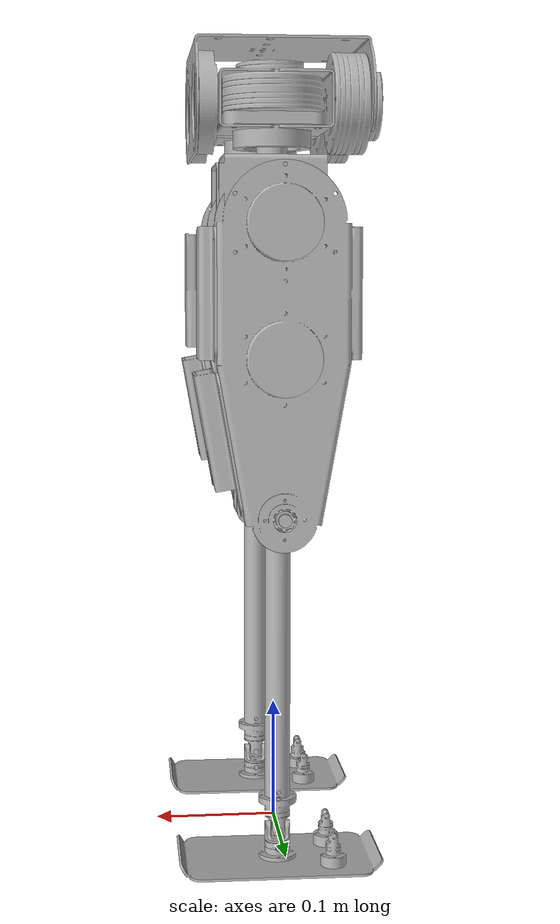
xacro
<?xml version="1.0" ?>
<robot name="bipedal_floating" xmlns:xacro="http://www.ros.org/wiki/xacro">

<xacro:include filename="$(find bipedal_floating_description)/urdf/materials.xacro" />
<xacro:include filename="$(find bipedal_floating_description)/urdf/bipedal_floating.trans" />
<xacro:include filename="$(find bipedal_floating_description)/urdf/bipedal_floating.gazebo" />

<link name="l_foot"/>
<joint name="l_foot_joint" type="fixed">
  <parent link="l_foot_1"/>
  <child link="l_foot"/>
  <origin xyz="0 0 -0.026" rpy="0 0 0"/>
</joint>

<link name="r_foot"/>
<joint name="r_foot_joint" type="fixed">
  <parent link="r_foot_1"/>
  <child link="r_foot"/>
  <origin xyz="0 0 -0.026" rpy="0 0 0"/>
</joint>

<link name="pelvis_link"/>

<joint name="pelvis_joint" type="fixed">
  <parent link="base_link"/>
  <child link="pelvis_link"/>
  <origin xyz="0 0 0.598" rpy="0 0 0"/>
</joint>

<link name="base_link">
  <inertial>
    <origin xyz="0.004448787386234898 1.5968454112255015e-14 0.6292535711325027" rpy="0 0 0"/>
    <mass value="0.1903032786352579"/>
    <inertia ixx="0.00052" iyy="0.000694" izz="0.000957" ixy="-0.0" iyz="0.0" ixz="5.3e-05"/>
  </inertial>
  <visual>
    <origin xyz="0 0 0" rpy="0 0 0"/>
    <geometry>
      <mesh filename="file://$(find bipedal_floating_description)/meshes/base_link.stl" scale="0.001 0.001 0.001"/>
    </geometry>
    <material name="silver"/>
  </visual>
  <collision>
    <origin xyz="0 0 0" rpy="0 0 0"/>
    <geometry>
      <mesh filename="file://$(find bipedal_floating_description)/meshes/base_link.stl" scale="0.001 0.001 0.001"/>
    </geometry>
  </collision>
</link>

<link name="l_hip_yaw_1">
  <inertial>
    <origin xyz="-0.008686028210471087 1.0747219545657882e-05 -0.0010215296475208913" rpy="0 0 0"/>
    <mass value="1.3123446705318125"/>
    <inertia ixx="0.000955" iyy="0.002546" izz="0.002645" ixy="0.0" iyz="0.0" ixz="1.2e-05"/>
  </inertial>
  <visual>
    <origin xyz="-0.0 -0.049 -0.598" rpy="0 0 0"/>
    <geometry>
      <mesh filename="file://$(find bipedal_floating_description)/meshes/l_hip_yaw_1.stl" scale="0.001 0.001 0.001"/>
    </geometry>
    <material name="silver"/>
  </visual>
  <collision>
    <origin xyz="-0.0 -0.049 -0.598" rpy="0 0 0"/>
    <geometry>
      <mesh filename="file://$(find bipedal_floating_description)/meshes/l_hip_yaw_1.stl" scale="0.001 0.001 0.001"/>
    </geometry>
  </collision>
</link>

<link name="l_hip_pitch_1">
  <inertial>
    <origin xyz="1.3503261009351064e-13 0.002249212649152163 -0.03225000047092852" rpy="0 0 0"/>
    <mass value="0.09452024478783401"/>
    <inertia ixx="0.000169" iyy="0.000138" izz="0.000134" ixy="-0.0" iyz="5e-06" ixz="0.0"/>
  </inertial>
  <visual>
    <origin xyz="-0.007 -0.049 -0.5565" rpy="0 0 0"/>
    <geometry>
      <mesh filename="file://$(find bipedal_floating_description)/meshes/l_hip_pitch_1.stl" scale="0.001 0.001 0.001"/>
    </geometry>
    <material name="silver"/>
  </visual>
  <collision>
    <origin xyz="-0.007 -0.049 -0.5565" rpy="0 0 0"/>
    <geometry>
      <mesh filename="file://$(find bipedal_floating_description)/meshes/l_hip_pitch_1.stl" scale="0.001 0.001 0.001"/>
    </geometry>
  </collision>
</link>

<link name="l_thigh_1">
  <inertial>
    <origin xyz="0.0016426182580731802 0.013341929405478986 -0.056929166992660485" rpy="0 0 0"/>
    <mass value="2.3858185051491128"/>
    <inertia ixx="0.0131" iyy="0.010446" izz="0.005641" ixy="-1e-06" iyz="0.000619" ixz="0.000309"/>
  </inertial>
  <visual>
    <origin xyz="-0.007 -0.081 -0.5015" rpy="0 0 0"/>
    <geometry>
      <mesh filename="file://$(find bipedal_floating_description)/meshes/l_thigh_1.stl" scale="0.001 0.001 0.001"/>
    </geometry>
    <material name="silver"/>
  </visual>
  <collision>
    <origin xyz="-0.007 -0.081 -0.5015" rpy="0 0 0"/>
    <geometry>
      <mesh filename="file://$(find bipedal_floating_description)/meshes/l_thigh_1.stl" scale="0.001 0.001 0.001"/>
    </geometry>
  </collision>
</link>

<link name="l_shank_1">
  <inertial>
    <origin xyz="0.004984925328106679 7.259530104525291e-06 -0.06240964405618768" rpy="0 0 0"/>
    <mass value="0.17890207652074486"/>
    <inertia ixx="0.001648" iyy="0.001636" izz="6.4e-05" ixy="0.0" iyz="0.0" ixz="-6.5e-05"/>
  </inertial>
  <visual>
    <origin xyz="-0.007 -0.1 -0.2815" rpy="0 0 0"/>
    <geometry>
      <mesh filename="file://$(find bipedal_floating_description)/meshes/l_shank_1.stl" scale="0.001 0.001 0.001"/>
    </geometry>
    <material name="silver"/>
  </visual>
  <collision>
    <origin xyz="-0.007 -0.1 -0.2815" rpy="0 0 0"/>
    <geometry>
      <mesh filename="file://$(find bipedal_floating_description)/meshes/l_shank_1.stl" scale="0.001 0.001 0.001"/>
    </geometry>
  </collision>
</link>

<link name="l_ankle_1">
  <inertial>
    <origin xyz="-1.6327607668675803e-12 -2.6635638139538287e-13 -2.65149013856103e-13" rpy="0 0 0"/>
    <mass value="0.0048216566019272334"/>
    <inertia ixx="0.0" iyy="0.0" izz="0.0" ixy="0.0" iyz="0.0" ixz="0.0"/>
  </inertial>
  <visual>
    <origin xyz="-0.007 -0.1 -0.026" rpy="0 0 0"/>
    <geometry>
      <mesh filename="file://$(find bipedal_floating_description)/meshes/l_ankle_1.stl" scale="0.001 0.001 0.001"/>
    </geometry>
    <material name="silver"/>
  </visual>
  <collision>
    <origin xyz="-0.007 -0.1 -0.026" rpy="0 0 0"/>
    <geometry>
      <mesh filename="file://$(find bipedal_floating_description)/meshes/l_ankle_1.stl" scale="0.001 0.001 0.001"/>
    </geometry>
  </collision>
</link>

<link name="l_foot_1">
  <inertial>
    <origin xyz="-0.007193439720271516 3.543644007397706e-08 -0.022022257217914048" rpy="0 0 0"/>
    <mass value="0.11348144787449325"/>
    <inertia ixx="6.4e-05" iyy="0.000197" izz="0.000255" ixy="-0.0" iyz="-0.0" ixz="4e-06"/>
  </inertial>
  <visual>
    <origin xyz="-0.007 -0.1 -0.026" rpy="0 0 0"/>
    <geometry>
      <mesh filename="file://$(find bipedal_floating_description)/meshes/l_foot_1.stl" scale="0.001 0.001 0.001"/>
    </geometry>
    <material name="silver"/>
  </visual>
  <collision>
    <origin xyz="-0.007 -0.1 -0.026" rpy="0 0 0"/>
    <geometry>
      <mesh filename="file://$(find bipedal_floating_description)/meshes/l_foot_1.stl" scale="0.001 0.001 0.001"/>
    </geometry>
  </collision>
</link>

<link name="r_hip_yaw_1">
  <inertial>
    <origin xyz="-0.008686028210471087 1.0747219545685638e-05 -0.0010215296475208913" rpy="0 0 0"/>
    <mass value="1.3123446705318125"/>
    <inertia ixx="0.000955" iyy="0.002546" izz="0.002645" ixy="0.0" iyz="0.0" ixz="1.2e-05"/>
  </inertial>
  <visual>
    <origin xyz="-0.0 0.049 -0.598" rpy="0 0 0"/>
    <geometry>
      <mesh filename="file://$(find bipedal_floating_description)/meshes/r_hip_yaw_1.stl" scale="0.001 0.001 0.001"/>
    </geometry>
    <material name="silver"/>
  </visual>
  <collision>
    <origin xyz="-0.0 0.049 -0.598" rpy="0 0 0"/>
    <geometry>
      <mesh filename="file://$(find bipedal_floating_description)/meshes/r_hip_yaw_1.stl" scale="0.001 0.001 0.001"/>
    </geometry>
  </collision>
</link>

<link name="r_hip_pitch_1">
  <inertial>
    <origin xyz="1.349389350258079e-13 -0.0022492126491521908 -0.032250000471034546" rpy="0 0 0"/>
    <mass value="0.09452024478783433"/>
    <inertia ixx="0.000169" iyy="0.000138" izz="0.000134" ixy="-0.0" iyz="-5e-06" ixz="-0.0"/>
  </inertial>
  <visual>
    <origin xyz="-0.007 0.049 -0.5565" rpy="0 0 0"/>
    <geometry>
      <mesh filename="file://$(find bipedal_floating_description)/meshes/r_hip_pitch_1.stl" scale="0.001 0.001 0.001"/>
    </geometry>
    <material name="silver"/>
  </visual>
  <collision>
    <origin xyz="-0.007 0.049 -0.5565" rpy="0 0 0"/>
    <geometry>
      <mesh filename="file://$(find bipedal_floating_description)/meshes/r_hip_pitch_1.stl" scale="0.001 0.001 0.001"/>
    </geometry>
  </collision>
</link>

<link name="r_thigh_1">
  <inertial>
    <origin xyz="0.0016457802204424754 -0.013253546738009186 -0.056650474556342145" rpy="0 0 0"/>
    <mass value="2.3812347441494124"/>
    <inertia ixx="0.012971" iyy="0.010328" izz="0.005628" ixy="2e-06" iyz="-0.000581" ixz="0.00031"/>
  </inertial>
  <visual>
    <origin xyz="-0.007 0.081 -0.5015" rpy="0 0 0"/>
    <geometry>
      <mesh filename="file://$(find bipedal_floating_description)/meshes/r_thigh_1.stl" scale="0.001 0.001 0.001"/>
    </geometry>
    <material name="silver"/>
  </visual>
  <collision>
    <origin xyz="-0.007 0.081 -0.5015" rpy="0 0 0"/>
    <geometry>
      <mesh filename="file://$(find bipedal_floating_description)/meshes/r_thigh_1.stl" scale="0.001 0.001 0.001"/>
    </geometry>
  </collision>
</link>

<link name="r_shank_1">
  <inertial>
    <origin xyz="0.004984925329792369 7.259530645689627e-06 -0.062409644056185654" rpy="0 0 0"/>
    <mass value="0.17890207652074486"/>
    <inertia ixx="0.001648" iyy="0.001636" izz="6.4e-05" ixy="0.0" iyz="0.0" ixz="-6.5e-05"/>
  </inertial>
  <visual>
    <origin xyz="-0.007 0.1 -0.2815" rpy="0 0 0"/>
    <geometry>
      <mesh filename="file://$(find bipedal_floating_description)/meshes/r_shank_1.stl" scale="0.001 0.001 0.001"/>
    </geometry>
    <material name="silver"/>
  </visual>
  <collision>
    <origin xyz="-0.007 0.1 -0.2815" rpy="0 0 0"/>
    <geometry>
      <mesh filename="file://$(find bipedal_floating_description)/meshes/r_shank_1.stl" scale="0.001 0.001 0.001"/>
    </geometry>
  </collision>
</link>

<link name="r_ankle_1">
  <inertial>
    <origin xyz="5.2698297114961434e-14 2.7823576775887204e-13 -2.635947016216278e-13" rpy="0 0 0"/>
    <mass value="0.0048216566019272334"/>
    <inertia ixx="0.0" iyy="0.0" izz="0.0" ixy="0.0" iyz="-0.0" ixz="0.0"/>
  </inertial>
  <visual>
    <origin xyz="-0.007 0.1 -0.026" rpy="0 0 0"/>
    <geometry>
      <mesh filename="file://$(find bipedal_floating_description)/meshes/r_ankle_1.stl" scale="0.001 0.001 0.001"/>
    </geometry>
    <material name="silver"/>
  </visual>
  <collision>
    <origin xyz="-0.007 0.1 -0.026" rpy="0 0 0"/>
    <geometry>
      <mesh filename="file://$(find bipedal_floating_description)/meshes/r_ankle_1.stl" scale="0.001 0.001 0.001"/>
    </geometry>
  </collision>
</link>

<link name="r_foot_1">
  <inertial>
    <origin xyz="-0.007193439718586046 3.543699027275249e-08 -0.022022257217911886" rpy="0 0 0"/>
    <mass value="0.11348144787449325"/>
    <inertia ixx="6.4e-05" iyy="0.000197" izz="0.000255" ixy="-0.0" iyz="-0.0" ixz="4e-06"/>
  </inertial>
  <visual>
    <origin xyz="-0.007 0.1 -0.026" rpy="0 0 0"/>
    <geometry>
      <mesh filename="file://$(find bipedal_floating_description)/meshes/r_foot_1.stl" scale="0.001 0.001 0.001"/>
    </geometry>
    <material name="silver"/>
  </visual>
  <collision>
    <origin xyz="-0.007 0.1 -0.026" rpy="0 0 0"/>
    <geometry>
      <mesh filename="file://$(find bipedal_floating_description)/meshes/r_foot_1.stl" scale="0.001 0.001 0.001"/>
    </geometry>
  </collision>
</link>

<joint name="L_Hip_Roll" type="revolute">
  <origin xyz="0.0 0.049 0.598" rpy="0 0 0"/>
  <parent link="base_link"/>
  <child link="l_hip_yaw_1"/>
  <axis xyz="1.0 0.0 0.0"/>
  <dynamics damping="1" friction="0.2"/>
  <limit upper="0.523599" lower="-0.523599" effort="15" velocity="45"/>
</joint>

<joint name="L_Hip_Yaw" type="revolute">
  <origin xyz="0.007 0.0 -0.0415" rpy="0 0 0"/>
  <parent link="l_hip_yaw_1"/>
  <child link="l_hip_pitch_1"/>
  <axis xyz="0.0 0.0 1.0"/>
  <dynamics damping="1" friction="0.2"/>
  <limit upper="0.523599" lower="-0.523599" effort="15" velocity="45"/>
</joint>

<joint name="L_Hip_Pitch" type="revolute">
  <origin xyz="0.0 0.032 -0.055" rpy="0 0 0"/>
  <parent link="l_hip_pitch_1"/>
  <child link="l_thigh_1"/>
  <axis xyz="0.0 1.0 -0.0"/>
  <dynamics damping="1" friction="0.2"/>
  <limit upper="1.570796" lower="-1.570796" effort="15" velocity="45"/>
</joint>

<joint name="L_Knee_Pitch" type="revolute">
  <origin xyz="0.0 0.019 -0.22" rpy="0 0 0"/>
  <parent link="l_thigh_1"/>
  <child link="l_shank_1"/>
  <axis xyz="0.0 1.0 0.0"/>
  <dynamics damping="0.25" friction="0.2"/>
  <limit upper="1.919862" lower="0.0" effort="15" velocity="45"/>
</joint>

<joint name="L_Ankle_Pitch" type="revolute">
  <origin xyz="0.0 0.0 -0.2555" rpy="0 0 0"/>
  <parent link="l_shank_1"/>
  <child link="l_ankle_1"/>
  <axis xyz="0.0 1.0 0.0"/>
  <dynamics damping="0.05" friction="0.2"/>
  <limit upper="0.436332" lower="-0.436332" effort="15" velocity="45"/>
</joint>

<joint name="L_Ankle_Roll" type="revolute">
  <origin xyz="0.0 0.0 0.0" rpy="0 0 0"/>
  <parent link="l_ankle_1"/>
  <child link="l_foot_1"/>
  <axis xyz="1.0 0.0 -0.0"/>
  <dynamics damping="0.05" friction="0.2"/>
  <limit upper="0.436332" lower="-0.436332" effort="15" velocity="45"/>
</joint>

<joint name="R_Hip_Roll" type="revolute">
  <origin xyz="0.0 -0.049 0.598" rpy="0 0 0"/>
  <parent link="base_link"/>
  <child link="r_hip_yaw_1"/>
  <axis xyz="1.0 0.0 0.0"/>
  <dynamics damping="1" friction="0.2"/>
  <limit upper="0.523599" lower="-0.523599" effort="15" velocity="45"/>
</joint>

<joint name="R_Hip_Yaw" type="revolute">
  <origin xyz="0.007 0.0 -0.0415" rpy="0 0 0"/>
  <parent link="r_hip_yaw_1"/>
  <child link="r_hip_pitch_1"/>
  <axis xyz="0.0 0.0 1.0"/>
  <dynamics damping="1" friction="0.2"/>
  <limit upper="0.523599" lower="-0.523599" effort="15" velocity="45"/>
</joint>

<joint name="R_Hip_Pitch" type="revolute">
  <origin xyz="0.0 -0.032 -0.055" rpy="0 0 0"/>
  <parent link="r_hip_pitch_1"/>
  <child link="r_thigh_1"/>
  <axis xyz="0.0 1.0 0.0"/>
  <dynamics damping="1" friction="0.2"/>
  <limit upper="1.570796" lower="-1.570796" effort="15" velocity="45"/>
</joint>

<joint name="R_Knee_Pitch" type="revolute">
  <origin xyz="0.0 -0.019 -0.22" rpy="0 0 0"/>
  <parent link="r_thigh_1"/>
  <child link="r_shank_1"/>
  <axis xyz="0.0 1.0 0.0"/>
  <dynamics damping="0.25" friction="0.2"/>
  <limit upper="1.919862" lower="0.0" effort="15" velocity="45"/>
</joint>

<joint name="R_Ankle_Pitch" type="revolute">
  <origin xyz="0.0 0.0 -0.2555" rpy="0 0 0"/>
  <parent link="r_shank_1"/>
  <child link="r_ankle_1"/>
  <axis xyz="0.0 1.0 -0.0"/>
  <dynamics damping="0.05" friction="0.2"/>
  <limit upper="0.436332" lower="-0.436332" effort="15" velocity="45"/>
</joint>

<joint name="R_Ankle_Roll" type="revolute">
  <origin xyz="0.0 0.0 0.0" rpy="0 0 0"/>
  <parent link="r_ankle_1"/>
  <child link="r_foot_1"/>
  <axis xyz="1.0 0.0 -0.0"/>
  <dynamics damping="0.05" friction="0.2"/>
  <limit upper="0.436332" lower="-0.436332" effort="15" velocity="45"/>
</joint>

<ros2_control name="GazeboSystem" type="system">
  <hardware>
    <plugin>gazebo_ros2_control/GazeboSystem</plugin>
  </hardware>

  <joint name="L_Hip_Roll">
    <command_interface name="position">
      <param name="initial_position">0.0</param>
    </command_interface>
    <command_interface name="effort"/>
    <state_interface name="position"/>
    <state_interface name="velocity"/>
    <state_interface name="effort"/>
  </joint>
  <joint name="L_Hip_Yaw">
    <command_interface name="position">
      <param name="initial_position">0.0</param>
    </command_interface>
    <command_interface name="effort"/>
    <state_interface name="position"/>
    <state_interface name="velocity"/>
    <state_interface name="effort"/>
  </joint>
  <joint name="L_Hip_Pitch">
    <command_interface name="position">
      <param name="initial_position">0.0</param>
    </command_interface>
    <command_interface name="effort"/>
    <state_interface name="position"/>
    <state_interface name="velocity"/>
    <state_interface name="effort"/>
  </joint>
  <joint name="L_Knee_Pitch">
    <command_interface name="position">
      <param name="initial_position">0.0</param>
    </command_interface>
    <command_interface name="effort"/>
    <state_interface name="position"/>
    <state_interface name="velocity"/>
    <state_interface name="effort"/>
  </joint>
  <joint name="L_Ankle_Pitch">
    <command_interface name="position">
      <param name="initial_position">0.0</param>
    </command_interface>
    <command_interface name="effort"/>
    <state_interface name="position"/>
    <state_interface name="velocity"/>
    <state_interface name="effort"/>
  </joint>
  <joint name="L_Ankle_Roll">
    <command_interface name="position">
      <param name="initial_position">0.0</param>
    </command_interface>
    <command_interface name="effort"/>
    <state_interface name="position"/>
    <state_interface name="velocity"/>
    <state_interface name="effort"/>
  </joint>

  <joint name="R_Hip_Roll">
    <command_interface name="position">
      <param name="initial_position">0.0</param>
    </command_interface>
    <command_interface name="effort"/>
    <state_interface name="position"/>
    <state_interface name="velocity"/>
    <state_interface name="effort"/>
  </joint>

  <joint name="R_Hip_Yaw">
    <command_interface name="position">
      <param name="initial_position">0.0</param>
    </command_interface>
    <command_interface name="effort"/>
    <state_interface name="position"/>
    <state_interface name="velocity"/>
    <state_interface name="effort"/>
  </joint>

  <joint name="R_Hip_Pitch">
    <command_interface name="position">
      <param name="initial_position">0.0</param>
    </command_interface>
    <command_interface name="effort"/>
    <state_interface name="position"/>
    <state_interface name="velocity"/>
    <state_interface name="effort"/>
  </joint>

  <joint name="R_Knee_Pitch">
    <command_interface name="position">
      <param name="initial_position">0.0</param>
    </command_interface>
    <command_interface name="effort"/>
    <state_interface name="position"/>
    <state_interface name="velocity"/>
    <state_interface name="effort"/>
  </joint>

  <joint name="R_Ankle_Pitch">
    <command_interface name="position">
      <param name="initial_position">0.0</param>
    </command_interface>
    <command_interface name="effort"/>
    <state_interface name="position"/>
    <state_interface name="velocity"/>
    <state_interface name="effort"/>
  </joint>

  <joint name="R_Ankle_Roll">
    <command_interface name="position">
      <param name="initial_position">0.0</param>
    </command_interface>
    <command_interface name="effort"/>
    <state_interface name="position"/>
    <state_interface name="velocity"/>
    <state_interface name="effort"/>
  </joint>
</ros2_control>

<gazebo>
  <plugin filename="libgazebo_ros2_control.so" name="gazebo_ros2_control">
    <robot_sim_type>gazebo_ros2_control/GazeboSystem</robot_sim_type>
    <parameters>$(find bipedal_floating_description)/config/effort_controller.yaml</parameters>
  </plugin>

  <plugin name="gazebo_link_attacher" filename="libgazebo_link_attacher.so"/>

  <plugin name="p3d_base_controller" filename="libgazebo_ros_p3d.so">
    <update_rate>500.0</update_rate>
    <body_name>base_link</body_name>
    <frame_name>world</frame_name>
    <gaussian_noise>0.0</gaussian_noise>
    <xyz_offset>0 0 0</xyz_offset>
    <rpy_offset>0 0 0</rpy_offset>
  </plugin>

</gazebo>

</robot>

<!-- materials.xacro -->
<robot name="bipedal_floating" xmlns:xacro="http://www.ros.org/wiki/xacro" >

<material name="silver">
  <color rgba="0.700 0.700 0.700 1.000"/>
</material>

</robot>

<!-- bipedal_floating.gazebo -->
<robot name="bipedal_floating" xmlns:xacro="http://www.ros.org/wiki/xacro" >

<xacro:property name="body_color" value="Gazebo/Silver" />

<gazebo>
  <plugin name="control" filename="libgazebo_ros_control.so"/>
</gazebo>
<gazebo reference="base_link">
  <material>${body_color}</material>
  <mu1>0.2</mu1>
  <mu2>0.2</mu2>
  <self_collide>true</self_collide>
  <gravity>true</gravity>
</gazebo>

<gazebo reference="l_hip_yaw_1">
  <material>${body_color}</material>
  <mu1>0.2</mu1>
  <mu2>0.2</mu2>
  <self_collide>true</self_collide>
</gazebo>

<gazebo reference="l_hip_pitch_1">
  <material>${body_color}</material>
  <mu1>0.2</mu1>
  <mu2>0.2</mu2>
  <self_collide>true</self_collide>
</gazebo>

<gazebo reference="l_thigh_1">
  <material>${body_color}</material>
  <mu1>0.2</mu1>
  <mu2>0.2</mu2>
  <self_collide>true</self_collide>
</gazebo>

<gazebo reference="l_shank_1">
  <material>${body_color}</material>
  <mu1>0.2</mu1>
  <mu2>0.2</mu2>
  <self_collide>true</self_collide>
</gazebo>

<gazebo reference="l_ankle_1">
  <material>${body_color}</material>
  <mu1>0.2</mu1>
  <mu2>0.2</mu2>
  <self_collide>true</self_collide>
</gazebo>

<gazebo reference="l_foot_1">
  <material>${body_color}</material>
  <mu1>15</mu1>
  <mu2>15</mu2>
  <maxContacts>100</maxContacts>
  <self_collide>true</self_collide>
</gazebo>

<gazebo reference="r_hip_yaw_1">
  <material>${body_color}</material>
  <mu1>0.2</mu1>
  <mu2>0.2</mu2>
  <selfCollide>true</selfCollide>
</gazebo>

<gazebo reference="r_hip_pitch_1">
  <material>${body_color}</material>
  <mu1>0.2</mu1>
  <mu2>0.2</mu2>
  <self_collide>true</self_collide>
</gazebo>

<gazebo reference="r_thigh_1">
  <material>${body_color}</material>
  <mu1>0.2</mu1>
  <mu2>0.2</mu2>
  <self_collide>true</self_collide>
</gazebo>

<gazebo reference="r_shank_1">
  <material>${body_color}</material>
  <mu1>0.2</mu1>
  <mu2>0.2</mu2>
  <self_collide>true</self_collide>
</gazebo>

<gazebo reference="r_ankle_1">
  <material>${body_color}</material>
  <mu1>0.2</mu1>
  <mu2>0.2</mu2>
  <self_collide>true</self_collide>
</gazebo>

<gazebo reference="r_foot_1">
  <material>${body_color}</material>
  <mu1>15</mu1>
  <mu2>15</mu2>
  <maxContacts>100</maxContacts>
  <selfCollide>true</selfCollide>
</gazebo>

<gazebo reference="r_foot_1">
    <sensor name="bumper" type="contact">
        <always_on>true</always_on>
        <update_rate>200</update_rate>
        <contact>
            <collision>r_foot_1_collision</collision>
        </contact>
        <plugin name="bumper" filename="libgazebo_ros_bumper.so">
            <ros>
                <namespace>r_foot</namespace>
                <remapping>bumper_states:=bumper_demo</remapping>
            </ros>
            <frame_name>r_foot_1</frame_name>
        </plugin>
    </sensor>
</gazebo>

<gazebo reference="l_foot_1">
    <sensor name="bumper" type="contact">
        <always_on>true</always_on>
        <update_rate>200</update_rate>
        <contact>
            <collision>l_foot_1_collision</collision>
        </contact>
        <plugin name="bumper" filename="libgazebo_ros_bumper.so">
            <ros>
                <namespace>l_foot</namespace>
                <remapping>bumper_states:=bumper_demo</remapping>
            </ros>
            <frame_name>l_foot_1</frame_name>
        </plugin>
    </sensor>
</gazebo>

</robot>
